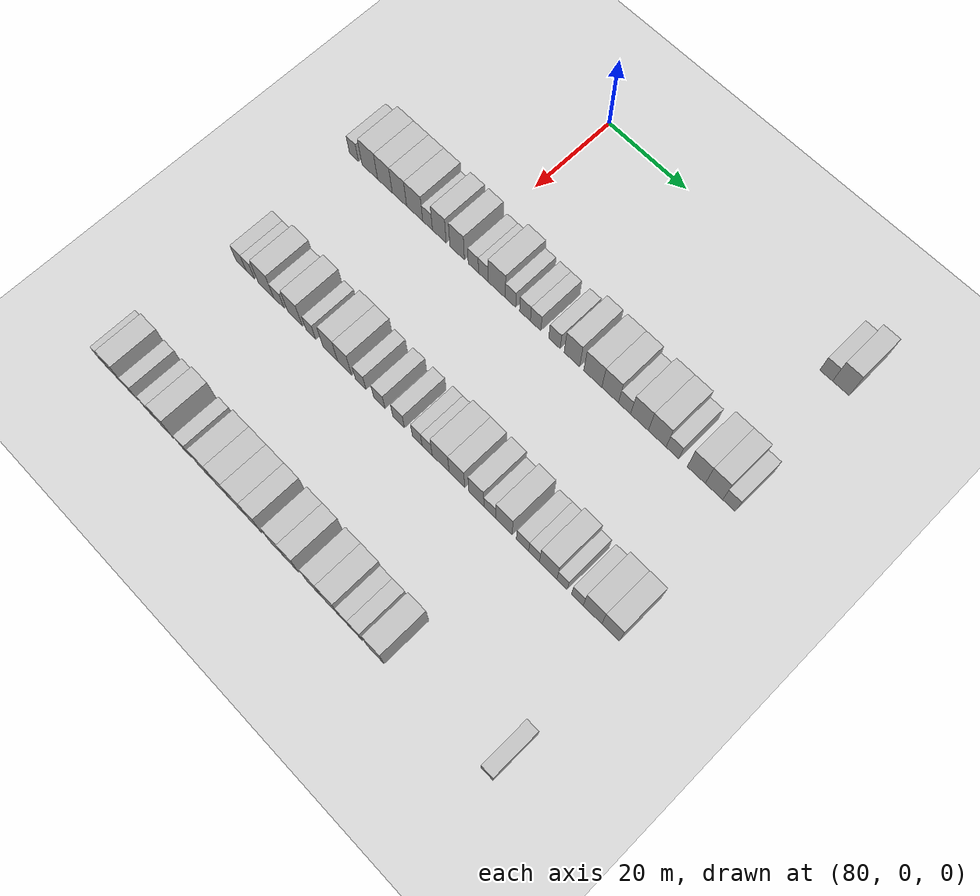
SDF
<sdf version="1.6">
 <world name="default">
  <include>
   <name>ground_plane_2</name>
   <uri>model://HANNAS_ground_plane</uri>
   <pose>100 0 0  0 0 0</pose>
  </include>
  <model name="building_579">
   <static>1</static>
   <pose>85.0000 62.6879 0 0.000000 0.000000 0.000000</pose>
   <link name="link">
    <pose>0 0 3.00 0 0 0</pose>
    <collision name="collision"><geometry><box><size>10.0000 2.9323 6.0000</size></box></geometry></collision>
    <visual name="visual">
     <cast_shadows>0</cast_shadows>
     <geometry><box><size>10.0000 2.9323 6.0000</size></box></geometry>
     <material>
      <script>
       <uri>model://HANNAS_wall/materials/scripts</uri>
       <uri>model://HANNAS_wall/materials/textures</uri>
       <name>vrc/HANNAS_wall</name>
      </script>
     </material>
    </visual>
   </link>
  </model>
  <model name="building_580">
   <static>1</static>
   <pose>85.0000 66.0612 0 0.000000 0.000000 0.000000</pose>
   <link name="link">
    <pose>0 0 4.50 0 0 0</pose>
    <collision name="collision"><geometry><box><size>10.0000 3.8143 9.0000</size></box></geometry></collision>
    <visual name="visual">
     <cast_shadows>0</cast_shadows>
     <geometry><box><size>10.0000 3.8143 9.0000</size></box></geometry>
     <material>
      <script>
       <uri>model://HANNAS_wall/materials/scripts</uri>
       <uri>model://HANNAS_wall/materials/textures</uri>
       <name>vrc/HANNAS_wall</name>
      </script>
     </material>
    </visual>
   </link>
  </model>
  <model name="building_777">
   <static>1</static>
   <pose>115.0000 -28.6272 0 0.000000 0.000000 0.000000</pose>
   <link name="link">
    <pose>0 0 3.00 0 0 0</pose>
    <collision name="collision"><geometry><box><size>10.0000 2.5444 6.0000</size></box></geometry></collision>
    <visual name="visual">
     <cast_shadows>0</cast_shadows>
     <geometry><box><size>10.0000 2.5444 6.0000</size></box></geometry>
     <material>
      <script>
       <uri>model://HANNAS_wall/materials/scripts</uri>
       <uri>model://HANNAS_wall/materials/textures</uri>
       <name>vrc/HANNAS_wall</name>
      </script>
     </material>
    </visual>
   </link>
  </model>
  <model name="building_778">
   <static>1</static>
   <pose>115.0000 -24.1770 0 0.000000 0.000000 0.000000</pose>
   <link name="link">
    <pose>0 0 4.50 0 0 0</pose>
    <collision name="collision"><geometry><box><size>10.0000 4.3560 9.0000</size></box></geometry></collision>
    <visual name="visual">
     <cast_shadows>0</cast_shadows>
     <geometry><box><size>10.0000 4.3560 9.0000</size></box></geometry>
     <material>
      <script>
       <uri>model://HANNAS_wall/materials/scripts</uri>
       <uri>model://HANNAS_wall/materials/textures</uri>
       <name>vrc/HANNAS_wall</name>
      </script>
     </material>
    </visual>
   </link>
  </model>
  <model name="building_779">
   <static>1</static>
   <pose>115.0000 -19.9684 0 0.000000 0.000000 0.000000</pose>
   <link name="link">
    <pose>0 0 4.50 0 0 0</pose>
    <collision name="collision"><geometry><box><size>10.0000 4.0613 9.0000</size></box></geometry></collision>
    <visual name="visual">
     <cast_shadows>0</cast_shadows>
     <geometry><box><size>10.0000 4.0613 9.0000</size></box></geometry>
     <material>
      <script>
       <uri>model://HANNAS_wall/materials/scripts</uri>
       <uri>model://HANNAS_wall/materials/textures</uri>
       <name>vrc/HANNAS_wall</name>
      </script>
     </material>
    </visual>
   </link>
  </model>
  <model name="building_780">
   <static>1</static>
   <pose>115.0000 -15.9633 0 0.000000 0.000000 0.000000</pose>
   <link name="link">
    <pose>0 0 4.50 0 0 0</pose>
    <collision name="collision"><geometry><box><size>10.0000 3.9489 9.0000</size></box></geometry></collision>
    <visual name="visual">
     <cast_shadows>0</cast_shadows>
     <geometry><box><size>10.0000 3.9489 9.0000</size></box></geometry>
     <material>
      <script>
       <uri>model://HANNAS_wall/materials/scripts</uri>
       <uri>model://HANNAS_wall/materials/textures</uri>
       <name>vrc/HANNAS_wall</name>
      </script>
     </material>
    </visual>
   </link>
  </model>
  <model name="building_781">
   <static>1</static>
   <pose>115.0000 -11.8020 0 0.000000 0.000000 0.000000</pose>
   <link name="link">
    <pose>0 0 4.50 0 0 0</pose>
    <collision name="collision"><geometry><box><size>10.0000 4.3737 9.0000</size></box></geometry></collision>
    <visual name="visual">
     <cast_shadows>0</cast_shadows>
     <geometry><box><size>10.0000 4.3737 9.0000</size></box></geometry>
     <material>
      <script>
       <uri>model://HANNAS_wall/materials/scripts</uri>
       <uri>model://HANNAS_wall/materials/textures</uri>
       <name>vrc/HANNAS_wall</name>
      </script>
     </material>
    </visual>
   </link>
  </model>
  <model name="building_782">
   <static>1</static>
   <pose>115.0000 -8.3048 0 0.000000 0.000000 0.000000</pose>
   <link name="link">
    <pose>0 0 3.00 0 0 0</pose>
    <collision name="collision"><geometry><box><size>10.0000 2.6205 6.0000</size></box></geometry></collision>
    <visual name="visual">
     <cast_shadows>0</cast_shadows>
     <geometry><box><size>10.0000 2.6205 6.0000</size></box></geometry>
     <material>
      <script>
       <uri>model://HANNAS_wall/materials/scripts</uri>
       <uri>model://HANNAS_wall/materials/textures</uri>
       <name>vrc/HANNAS_wall</name>
      </script>
     </material>
    </visual>
   </link>
  </model>
  <model name="building_783">
   <static>1</static>
   <pose>115.0000 -5.1531 0 0.000000 0.000000 0.000000</pose>
   <link name="link">
    <pose>0 0 4.50 0 0 0</pose>
    <collision name="collision"><geometry><box><size>10.0000 3.6829 9.0000</size></box></geometry></collision>
    <visual name="visual">
     <cast_shadows>0</cast_shadows>
     <geometry><box><size>10.0000 3.6829 9.0000</size></box></geometry>
     <material>
      <script>
       <uri>model://HANNAS_wall/materials/scripts</uri>
       <uri>model://HANNAS_wall/materials/textures</uri>
       <name>vrc/HANNAS_wall</name>
      </script>
     </material>
    </visual>
   </link>
  </model>
  <model name="building_784">
   <static>1</static>
   <pose>115.0000 -0.3969 0 0.000000 0.000000 0.000000</pose>
   <link name="link">
    <pose>0 0 4.50 0 0 0</pose>
    <collision name="collision"><geometry><box><size>10.0000 3.8297 9.0000</size></box></geometry></collision>
    <visual name="visual">
     <cast_shadows>0</cast_shadows>
     <geometry><box><size>10.0000 3.8297 9.0000</size></box></geometry>
     <material>
      <script>
       <uri>model://HANNAS_wall/materials/scripts</uri>
       <uri>model://HANNAS_wall/materials/textures</uri>
       <name>vrc/HANNAS_wall</name>
      </script>
     </material>
    </visual>
   </link>
  </model>
  <model name="building_785">
   <static>1</static>
   <pose>115.0000 3.8708 0 0.000000 0.000000 0.000000</pose>
   <link name="link">
    <pose>0 0 3.00 0 0 0</pose>
    <collision name="collision"><geometry><box><size>10.0000 2.7057 6.0000</size></box></geometry></collision>
    <visual name="visual">
     <cast_shadows>0</cast_shadows>
     <geometry><box><size>10.0000 2.7057 6.0000</size></box></geometry>
     <material>
      <script>
       <uri>model://HANNAS_wall/materials/scripts</uri>
       <uri>model://HANNAS_wall/materials/textures</uri>
       <name>vrc/HANNAS_wall</name>
      </script>
     </material>
    </visual>
   </link>
  </model>
  <model name="building_786">
   <static>1</static>
   <pose>115.0000 6.4735 0 0.000000 0.000000 0.000000</pose>
   <link name="link">
    <pose>0 0 3.00 0 0 0</pose>
    <collision name="collision"><geometry><box><size>10.0000 2.4996 6.0000</size></box></geometry></collision>
    <visual name="visual">
     <cast_shadows>0</cast_shadows>
     <geometry><box><size>10.0000 2.4996 6.0000</size></box></geometry>
     <material>
      <script>
       <uri>model://HANNAS_wall/materials/scripts</uri>
       <uri>model://HANNAS_wall/materials/textures</uri>
       <name>vrc/HANNAS_wall</name>
      </script>
     </material>
    </visual>
   </link>
  </model>
  <model name="building_787">
   <static>1</static>
   <pose>115.0000 9.9530 0 0.000000 0.000000 0.000000</pose>
   <link name="link">
    <pose>0 0 4.50 0 0 0</pose>
    <collision name="collision"><geometry><box><size>10.0000 4.4594 9.0000</size></box></geometry></collision>
    <visual name="visual">
     <cast_shadows>0</cast_shadows>
     <geometry><box><size>10.0000 4.4594 9.0000</size></box></geometry>
     <material>
      <script>
       <uri>model://HANNAS_wall/materials/scripts</uri>
       <uri>model://HANNAS_wall/materials/textures</uri>
       <name>vrc/HANNAS_wall</name>
      </script>
     </material>
    </visual>
   </link>
  </model>
  <model name="building_788">
   <static>1</static>
   <pose>115.0000 13.5295 0 0.000000 0.000000 0.000000</pose>
   <link name="link">
    <pose>0 0 3.00 0 0 0</pose>
    <collision name="collision"><geometry><box><size>10.0000 2.6935 6.0000</size></box></geometry></collision>
    <visual name="visual">
     <cast_shadows>0</cast_shadows>
     <geometry><box><size>10.0000 2.6935 6.0000</size></box></geometry>
     <material>
      <script>
       <uri>model://HANNAS_wall/materials/scripts</uri>
       <uri>model://HANNAS_wall/materials/textures</uri>
       <name>vrc/HANNAS_wall</name>
      </script>
     </material>
    </visual>
   </link>
  </model>
  <model name="building_789">
   <static>1</static>
   <pose>115.0000 17.2553 0 0.000000 0.000000 0.000000</pose>
   <link name="link">
    <pose>0 0 3.00 0 0 0</pose>
    <collision name="collision"><geometry><box><size>10.0000 2.7581 6.0000</size></box></geometry></collision>
    <visual name="visual">
     <cast_shadows>0</cast_shadows>
     <geometry><box><size>10.0000 2.7581 6.0000</size></box></geometry>
     <material>
      <script>
       <uri>model://HANNAS_wall/materials/scripts</uri>
       <uri>model://HANNAS_wall/materials/textures</uri>
       <name>vrc/HANNAS_wall</name>
      </script>
     </material>
    </visual>
   </link>
  </model>
  <model name="building_790">
   <static>1</static>
   <pose>115.0000 19.9574 0 0.000000 0.000000 0.000000</pose>
   <link name="link">
    <pose>0 0 3.00 0 0 0</pose>
    <collision name="collision"><geometry><box><size>10.0000 2.6461 6.0000</size></box></geometry></collision>
    <visual name="visual">
     <cast_shadows>0</cast_shadows>
     <geometry><box><size>10.0000 2.6461 6.0000</size></box></geometry>
     <material>
      <script>
       <uri>model://HANNAS_wall/materials/scripts</uri>
       <uri>model://HANNAS_wall/materials/textures</uri>
       <name>vrc/HANNAS_wall</name>
      </script>
     </material>
    </visual>
   </link>
  </model>
  <model name="building_791">
   <static>1</static>
   <pose>115.0000 24.7151 0 0.000000 0.000000 0.000000</pose>
   <link name="link">
    <pose>0 0 3.00 0 0 0</pose>
    <collision name="collision"><geometry><box><size>10.0000 2.8693 6.0000</size></box></geometry></collision>
    <visual name="visual">
     <cast_shadows>0</cast_shadows>
     <geometry><box><size>10.0000 2.8693 6.0000</size></box></geometry>
     <material>
      <script>
       <uri>model://HANNAS_wall/materials/scripts</uri>
       <uri>model://HANNAS_wall/materials/textures</uri>
       <name>vrc/HANNAS_wall</name>
      </script>
     </material>
    </visual>
   </link>
  </model>
  <model name="building_792">
   <static>1</static>
   <pose>115.0000 29.0705 0 0.000000 0.000000 0.000000</pose>
   <link name="link">
    <pose>0 0 4.50 0 0 0</pose>
    <collision name="collision"><geometry><box><size>10.0000 3.8414 9.0000</size></box></geometry></collision>
    <visual name="visual">
     <cast_shadows>0</cast_shadows>
     <geometry><box><size>10.0000 3.8414 9.0000</size></box></geometry>
     <material>
      <script>
       <uri>model://HANNAS_wall/materials/scripts</uri>
       <uri>model://HANNAS_wall/materials/textures</uri>
       <name>vrc/HANNAS_wall</name>
      </script>
     </material>
    </visual>
   </link>
  </model>
  <model name="building_793">
   <static>1</static>
   <pose>115.0000 34.2207 0 0.000000 0.000000 0.000000</pose>
   <link name="link">
    <pose>0 0 4.50 0 0 0</pose>
    <collision name="collision"><geometry><box><size>10.0000 4.4589 9.0000</size></box></geometry></collision>
    <visual name="visual">
     <cast_shadows>0</cast_shadows>
     <geometry><box><size>10.0000 4.4589 9.0000</size></box></geometry>
     <material>
      <script>
       <uri>model://HANNAS_wall/materials/scripts</uri>
       <uri>model://HANNAS_wall/materials/textures</uri>
       <name>vrc/HANNAS_wall</name>
      </script>
     </material>
    </visual>
   </link>
  </model>
  <model name="building_794">
   <static>1</static>
   <pose>115.0000 38.4726 0 0.000000 0.000000 0.000000</pose>
   <link name="link">
    <pose>0 0 4.50 0 0 0</pose>
    <collision name="collision"><geometry><box><size>10.0000 4.0450 9.0000</size></box></geometry></collision>
    <visual name="visual">
     <cast_shadows>0</cast_shadows>
     <geometry><box><size>10.0000 4.0450 9.0000</size></box></geometry>
     <material>
      <script>
       <uri>model://HANNAS_wall/materials/scripts</uri>
       <uri>model://HANNAS_wall/materials/textures</uri>
       <name>vrc/HANNAS_wall</name>
      </script>
     </material>
    </visual>
   </link>
  </model>
  <model name="building_795">
   <static>1</static>
   <pose>115.0000 41.9657 0 0.000000 0.000000 0.000000</pose>
   <link name="link">
    <pose>0 0 3.00 0 0 0</pose>
    <collision name="collision"><geometry><box><size>10.0000 2.9412 6.0000</size></box></geometry></collision>
    <visual name="visual">
     <cast_shadows>0</cast_shadows>
     <geometry><box><size>10.0000 2.9412 6.0000</size></box></geometry>
     <material>
      <script>
       <uri>model://HANNAS_wall/materials/scripts</uri>
       <uri>model://HANNAS_wall/materials/textures</uri>
       <name>vrc/HANNAS_wall</name>
      </script>
     </material>
    </visual>
   </link>
  </model>
  <model name="building_796">
   <static>1</static>
   <pose>115.0000 45.5655 0 0.000000 0.000000 0.000000</pose>
   <link name="link">
    <pose>0 0 4.50 0 0 0</pose>
    <collision name="collision"><geometry><box><size>10.0000 4.2584 9.0000</size></box></geometry></collision>
    <visual name="visual">
     <cast_shadows>0</cast_shadows>
     <geometry><box><size>10.0000 4.2584 9.0000</size></box></geometry>
     <material>
      <script>
       <uri>model://HANNAS_wall/materials/scripts</uri>
       <uri>model://HANNAS_wall/materials/textures</uri>
       <name>vrc/HANNAS_wall</name>
      </script>
     </material>
    </visual>
   </link>
  </model>
  <model name="building_797">
   <static>1</static>
   <pose>115.0000 49.8046 0 0.000000 0.000000 0.000000</pose>
   <link name="link">
    <pose>0 0 4.50 0 0 0</pose>
    <collision name="collision"><geometry><box><size>10.0000 4.2198 9.0000</size></box></geometry></collision>
    <visual name="visual">
     <cast_shadows>0</cast_shadows>
     <geometry><box><size>10.0000 4.2198 9.0000</size></box></geometry>
     <material>
      <script>
       <uri>model://HANNAS_wall/materials/scripts</uri>
       <uri>model://HANNAS_wall/materials/textures</uri>
       <name>vrc/HANNAS_wall</name>
      </script>
     </material>
    </visual>
   </link>
  </model>
  <model name="building_798">
   <static>1</static>
   <pose>115.0000 53.4021 0 0.000000 0.000000 0.000000</pose>
   <link name="link">
    <pose>0 0 3.00 0 0 0</pose>
    <collision name="collision"><geometry><box><size>10.0000 2.9750 6.0000</size></box></geometry></collision>
    <visual name="visual">
     <cast_shadows>0</cast_shadows>
     <geometry><box><size>10.0000 2.9750 6.0000</size></box></geometry>
     <material>
      <script>
       <uri>model://HANNAS_wall/materials/scripts</uri>
       <uri>model://HANNAS_wall/materials/textures</uri>
       <name>vrc/HANNAS_wall</name>
      </script>
     </material>
    </visual>
   </link>
  </model>
  <model name="building_799">
   <static>1</static>
   <pose>115.0000 58.9686 0 0.000000 0.000000 0.000000</pose>
   <link name="link">
    <pose>0 0 4.50 0 0 0</pose>
    <collision name="collision"><geometry><box><size>10.0000 4.1580 9.0000</size></box></geometry></collision>
    <visual name="visual">
     <cast_shadows>0</cast_shadows>
     <geometry><box><size>10.0000 4.1580 9.0000</size></box></geometry>
     <material>
      <script>
       <uri>model://HANNAS_wall/materials/scripts</uri>
       <uri>model://HANNAS_wall/materials/textures</uri>
       <name>vrc/HANNAS_wall</name>
      </script>
     </material>
    </visual>
   </link>
  </model>
  <model name="building_800">
   <static>1</static>
   <pose>115.0000 63.0670 0 0.000000 0.000000 0.000000</pose>
   <link name="link">
    <pose>0 0 4.50 0 0 0</pose>
    <collision name="collision"><geometry><box><size>10.0000 4.0387 9.0000</size></box></geometry></collision>
    <visual name="visual">
     <cast_shadows>0</cast_shadows>
     <geometry><box><size>10.0000 4.0387 9.0000</size></box></geometry>
     <material>
      <script>
       <uri>model://HANNAS_wall/materials/scripts</uri>
       <uri>model://HANNAS_wall/materials/textures</uri>
       <name>vrc/HANNAS_wall</name>
      </script>
     </material>
    </visual>
   </link>
  </model>
  <model name="building_801">
   <static>1</static>
   <pose>115.0000 66.5256 0 0.000000 0.000000 0.000000</pose>
   <link name="link">
    <pose>0 0 3.00 0 0 0</pose>
    <collision name="collision"><geometry><box><size>10.0000 2.8786 6.0000</size></box></geometry></collision>
    <visual name="visual">
     <cast_shadows>0</cast_shadows>
     <geometry><box><size>10.0000 2.8786 6.0000</size></box></geometry>
     <material>
      <script>
       <uri>model://HANNAS_wall/materials/scripts</uri>
       <uri>model://HANNAS_wall/materials/textures</uri>
       <name>vrc/HANNAS_wall</name>
      </script>
     </material>
    </visual>
   </link>
  </model>
  <model name="building_1000">
   <static>1</static>
   <pose>145.0000 -26.2149 0 0.000000 0.000000 0.000000</pose>
   <link name="link">
    <pose>0 0 3.00 0 0 0</pose>
    <collision name="collision"><geometry><box><size>10.0000 2.8264 6.0000</size></box></geometry></collision>
    <visual name="visual">
     <cast_shadows>0</cast_shadows>
     <geometry><box><size>10.0000 2.8264 6.0000</size></box></geometry>
     <material>
      <script>
       <uri>model://HANNAS_wall/materials/scripts</uri>
       <uri>model://HANNAS_wall/materials/textures</uri>
       <name>vrc/HANNAS_wall</name>
      </script>
     </material>
    </visual>
   </link>
  </model>
  <model name="building_1001">
   <static>1</static>
   <pose>145.0000 -23.5952 0 0.000000 0.000000 0.000000</pose>
   <link name="link">
    <pose>0 0 3.00 0 0 0</pose>
    <collision name="collision"><geometry><box><size>10.0000 2.4131 6.0000</size></box></geometry></collision>
    <visual name="visual">
     <cast_shadows>0</cast_shadows>
     <geometry><box><size>10.0000 2.4131 6.0000</size></box></geometry>
     <material>
      <script>
       <uri>model://HANNAS_wall/materials/scripts</uri>
       <uri>model://HANNAS_wall/materials/textures</uri>
       <name>vrc/HANNAS_wall</name>
      </script>
     </material>
    </visual>
   </link>
  </model>
  <model name="building_1002">
   <static>1</static>
   <pose>145.0000 -19.2319 0 0.000000 0.000000 0.000000</pose>
   <link name="link">
    <pose>0 0 4.50 0 0 0</pose>
    <collision name="collision"><geometry><box><size>10.0000 4.3136 9.0000</size></box></geometry></collision>
    <visual name="visual">
     <cast_shadows>0</cast_shadows>
     <geometry><box><size>10.0000 4.3136 9.0000</size></box></geometry>
     <material>
      <script>
       <uri>model://HANNAS_wall/materials/scripts</uri>
       <uri>model://HANNAS_wall/materials/textures</uri>
       <name>vrc/HANNAS_wall</name>
      </script>
     </material>
    </visual>
   </link>
  </model>
  <model name="building_1003">
   <static>1</static>
   <pose>145.0000 -15.6306 0 0.000000 0.000000 0.000000</pose>
   <link name="link">
    <pose>0 0 3.00 0 0 0</pose>
    <collision name="collision"><geometry><box><size>10.0000 2.8890 6.0000</size></box></geometry></collision>
    <visual name="visual">
     <cast_shadows>0</cast_shadows>
     <geometry><box><size>10.0000 2.8890 6.0000</size></box></geometry>
     <material>
      <script>
       <uri>model://HANNAS_wall/materials/scripts</uri>
       <uri>model://HANNAS_wall/materials/textures</uri>
       <name>vrc/HANNAS_wall</name>
      </script>
     </material>
    </visual>
   </link>
  </model>
  <model name="building_1004">
   <static>1</static>
   <pose>145.0000 -11.1853 0 0.000000 0.000000 0.000000</pose>
   <link name="link">
    <pose>0 0 4.50 0 0 0</pose>
    <collision name="collision"><geometry><box><size>10.0000 4.0017 9.0000</size></box></geometry></collision>
    <visual name="visual">
     <cast_shadows>0</cast_shadows>
     <geometry><box><size>10.0000 4.0017 9.0000</size></box></geometry>
     <material>
      <script>
       <uri>model://HANNAS_wall/materials/scripts</uri>
       <uri>model://HANNAS_wall/materials/textures</uri>
       <name>vrc/HANNAS_wall</name>
      </script>
     </material>
    </visual>
   </link>
  </model>
  <model name="building_1005">
   <static>1</static>
   <pose>145.0000 -6.9002 0 0.000000 0.000000 0.000000</pose>
   <link name="link">
    <pose>0 0 3.00 0 0 0</pose>
    <collision name="collision"><geometry><box><size>10.0000 2.5684 6.0000</size></box></geometry></collision>
    <visual name="visual">
     <cast_shadows>0</cast_shadows>
     <geometry><box><size>10.0000 2.5684 6.0000</size></box></geometry>
     <material>
      <script>
       <uri>model://HANNAS_wall/materials/scripts</uri>
       <uri>model://HANNAS_wall/materials/textures</uri>
       <name>vrc/HANNAS_wall</name>
      </script>
     </material>
    </visual>
   </link>
  </model>
  <model name="building_1006">
   <static>1</static>
   <pose>145.0000 -1.6633 0 0.000000 0.000000 0.000000</pose>
   <link name="link">
    <pose>0 0 4.50 0 0 0</pose>
    <collision name="collision"><geometry><box><size>10.0000 3.9055 9.0000</size></box></geometry></collision>
    <visual name="visual">
     <cast_shadows>0</cast_shadows>
     <geometry><box><size>10.0000 3.9055 9.0000</size></box></geometry>
     <material>
      <script>
       <uri>model://HANNAS_wall/materials/scripts</uri>
       <uri>model://HANNAS_wall/materials/textures</uri>
       <name>vrc/HANNAS_wall</name>
      </script>
     </material>
    </visual>
   </link>
  </model>
  <model name="building_1007">
   <static>1</static>
   <pose>145.0000 2.1236 0 0.000000 0.000000 0.000000</pose>
   <link name="link">
    <pose>0 0 4.50 0 0 0</pose>
    <collision name="collision"><geometry><box><size>10.0000 3.6683 9.0000</size></box></geometry></collision>
    <visual name="visual">
     <cast_shadows>0</cast_shadows>
     <geometry><box><size>10.0000 3.6683 9.0000</size></box></geometry>
     <material>
      <script>
       <uri>model://HANNAS_wall/materials/scripts</uri>
       <uri>model://HANNAS_wall/materials/textures</uri>
       <name>vrc/HANNAS_wall</name>
      </script>
     </material>
    </visual>
   </link>
  </model>
  <model name="building_1008">
   <static>1</static>
   <pose>145.0000 6.3409 0 0.000000 0.000000 0.000000</pose>
   <link name="link">
    <pose>0 0 3.00 0 0 0</pose>
    <collision name="collision"><geometry><box><size>10.0000 2.7663 6.0000</size></box></geometry></collision>
    <visual name="visual">
     <cast_shadows>0</cast_shadows>
     <geometry><box><size>10.0000 2.7663 6.0000</size></box></geometry>
     <material>
      <script>
       <uri>model://HANNAS_wall/materials/scripts</uri>
       <uri>model://HANNAS_wall/materials/textures</uri>
       <name>vrc/HANNAS_wall</name>
      </script>
     </material>
    </visual>
   </link>
  </model>
  <model name="building_1009">
   <static>1</static>
   <pose>145.0000 11.2041 0 0.000000 0.000000 0.000000</pose>
   <link name="link">
    <pose>0 0 3.00 0 0 0</pose>
    <collision name="collision"><geometry><box><size>10.0000 2.9601 6.0000</size></box></geometry></collision>
    <visual name="visual">
     <cast_shadows>0</cast_shadows>
     <geometry><box><size>10.0000 2.9601 6.0000</size></box></geometry>
     <material>
      <script>
       <uri>model://HANNAS_wall/materials/scripts</uri>
       <uri>model://HANNAS_wall/materials/textures</uri>
       <name>vrc/HANNAS_wall</name>
      </script>
     </material>
    </visual>
   </link>
  </model>
  <model name="building_1010">
   <static>1</static>
   <pose>145.0000 16.1800 0 0.000000 0.000000 0.000000</pose>
   <link name="link">
    <pose>0 0 3.00 0 0 0</pose>
    <collision name="collision"><geometry><box><size>10.0000 2.9919 6.0000</size></box></geometry></collision>
    <visual name="visual">
     <cast_shadows>0</cast_shadows>
     <geometry><box><size>10.0000 2.9919 6.0000</size></box></geometry>
     <material>
      <script>
       <uri>model://HANNAS_wall/materials/scripts</uri>
       <uri>model://HANNAS_wall/materials/textures</uri>
       <name>vrc/HANNAS_wall</name>
      </script>
     </material>
    </visual>
   </link>
  </model>
  <model name="building_1011">
   <static>1</static>
   <pose>145.0000 20.9081 0 0.000000 0.000000 0.000000</pose>
   <link name="link">
    <pose>0 0 3.00 0 0 0</pose>
    <collision name="collision"><geometry><box><size>10.0000 2.4642 6.0000</size></box></geometry></collision>
    <visual name="visual">
     <cast_shadows>0</cast_shadows>
     <geometry><box><size>10.0000 2.4642 6.0000</size></box></geometry>
     <material>
      <script>
       <uri>model://HANNAS_wall/materials/scripts</uri>
       <uri>model://HANNAS_wall/materials/textures</uri>
       <name>vrc/HANNAS_wall</name>
      </script>
     </material>
    </visual>
   </link>
  </model>
  <model name="building_1012">
   <static>1</static>
   <pose>145.0000 23.4206 0 0.000000 0.000000 0.000000</pose>
   <link name="link">
    <pose>0 0 3.00 0 0 0</pose>
    <collision name="collision"><geometry><box><size>10.0000 2.5610 6.0000</size></box></geometry></collision>
    <visual name="visual">
     <cast_shadows>0</cast_shadows>
     <geometry><box><size>10.0000 2.5610 6.0000</size></box></geometry>
     <material>
      <script>
       <uri>model://HANNAS_wall/materials/scripts</uri>
       <uri>model://HANNAS_wall/materials/textures</uri>
       <name>vrc/HANNAS_wall</name>
      </script>
     </material>
    </visual>
   </link>
  </model>
  <model name="building_1013">
   <static>1</static>
   <pose>145.0000 26.8271 0 0.000000 0.000000 0.000000</pose>
   <link name="link">
    <pose>0 0 4.50 0 0 0</pose>
    <collision name="collision"><geometry><box><size>10.0000 4.2521 9.0000</size></box></geometry></collision>
    <visual name="visual">
     <cast_shadows>0</cast_shadows>
     <geometry><box><size>10.0000 4.2521 9.0000</size></box></geometry>
     <material>
      <script>
       <uri>model://HANNAS_wall/materials/scripts</uri>
       <uri>model://HANNAS_wall/materials/textures</uri>
       <name>vrc/HANNAS_wall</name>
      </script>
     </material>
    </visual>
   </link>
  </model>
  <model name="building_1014">
   <static>1</static>
   <pose>145.0000 30.8858 0 0.000000 0.000000 0.000000</pose>
   <link name="link">
    <pose>0 0 4.50 0 0 0</pose>
    <collision name="collision"><geometry><box><size>10.0000 3.8653 9.0000</size></box></geometry></collision>
    <visual name="visual">
     <cast_shadows>0</cast_shadows>
     <geometry><box><size>10.0000 3.8653 9.0000</size></box></geometry>
     <material>
      <script>
       <uri>model://HANNAS_wall/materials/scripts</uri>
       <uri>model://HANNAS_wall/materials/textures</uri>
       <name>vrc/HANNAS_wall</name>
      </script>
     </material>
    </visual>
   </link>
  </model>
  <model name="building_1015">
   <static>1</static>
   <pose>145.0000 35.6564 0 0.000000 0.000000 0.000000</pose>
   <link name="link">
    <pose>0 0 4.50 0 0 0</pose>
    <collision name="collision"><geometry><box><size>10.0000 3.6758 9.0000</size></box></geometry></collision>
    <visual name="visual">
     <cast_shadows>0</cast_shadows>
     <geometry><box><size>10.0000 3.6758 9.0000</size></box></geometry>
     <material>
      <script>
       <uri>model://HANNAS_wall/materials/scripts</uri>
       <uri>model://HANNAS_wall/materials/textures</uri>
       <name>vrc/HANNAS_wall</name>
      </script>
     </material>
    </visual>
   </link>
  </model>
  <model name="building_1016">
   <static>1</static>
   <pose>145.0000 38.9249 0 0.000000 0.000000 0.000000</pose>
   <link name="link">
    <pose>0 0 3.00 0 0 0</pose>
    <collision name="collision"><geometry><box><size>10.0000 2.8613 6.0000</size></box></geometry></collision>
    <visual name="visual">
     <cast_shadows>0</cast_shadows>
     <geometry><box><size>10.0000 2.8613 6.0000</size></box></geometry>
     <material>
      <script>
       <uri>model://HANNAS_wall/materials/scripts</uri>
       <uri>model://HANNAS_wall/materials/textures</uri>
       <name>vrc/HANNAS_wall</name>
      </script>
     </material>
    </visual>
   </link>
  </model>
  <model name="building_1017">
   <static>1</static>
   <pose>145.0000 42.3459 0 0.000000 0.000000 0.000000</pose>
   <link name="link">
    <pose>0 0 4.50 0 0 0</pose>
    <collision name="collision"><geometry><box><size>10.0000 3.9807 9.0000</size></box></geometry></collision>
    <visual name="visual">
     <cast_shadows>0</cast_shadows>
     <geometry><box><size>10.0000 3.9807 9.0000</size></box></geometry>
     <material>
      <script>
       <uri>model://HANNAS_wall/materials/scripts</uri>
       <uri>model://HANNAS_wall/materials/textures</uri>
       <name>vrc/HANNAS_wall</name>
      </script>
     </material>
    </visual>
   </link>
  </model>
  <model name="building_1018">
   <static>1</static>
   <pose>145.0000 46.8106 0 0.000000 0.000000 0.000000</pose>
   <link name="link">
    <pose>0 0 3.00 0 0 0</pose>
    <collision name="collision"><geometry><box><size>10.0000 2.9487 6.0000</size></box></geometry></collision>
    <visual name="visual">
     <cast_shadows>0</cast_shadows>
     <geometry><box><size>10.0000 2.9487 6.0000</size></box></geometry>
     <material>
      <script>
       <uri>model://HANNAS_wall/materials/scripts</uri>
       <uri>model://HANNAS_wall/materials/textures</uri>
       <name>vrc/HANNAS_wall</name>
      </script>
     </material>
    </visual>
   </link>
  </model>
  <model name="building_1019">
   <static>1</static>
   <pose>145.0000 49.5618 0 0.000000 0.000000 0.000000</pose>
   <link name="link">
    <pose>0 0 3.00 0 0 0</pose>
    <collision name="collision"><geometry><box><size>10.0000 2.5536 6.0000</size></box></geometry></collision>
    <visual name="visual">
     <cast_shadows>0</cast_shadows>
     <geometry><box><size>10.0000 2.5536 6.0000</size></box></geometry>
     <material>
      <script>
       <uri>model://HANNAS_wall/materials/scripts</uri>
       <uri>model://HANNAS_wall/materials/textures</uri>
       <name>vrc/HANNAS_wall</name>
      </script>
     </material>
    </visual>
   </link>
  </model>
  <model name="building_1020">
   <static>1</static>
   <pose>145.0000 52.8923 0 0.000000 0.000000 0.000000</pose>
   <link name="link">
    <pose>0 0 4.50 0 0 0</pose>
    <collision name="collision"><geometry><box><size>10.0000 4.1074 9.0000</size></box></geometry></collision>
    <visual name="visual">
     <cast_shadows>0</cast_shadows>
     <geometry><box><size>10.0000 4.1074 9.0000</size></box></geometry>
     <material>
      <script>
       <uri>model://HANNAS_wall/materials/scripts</uri>
       <uri>model://HANNAS_wall/materials/textures</uri>
       <name>vrc/HANNAS_wall</name>
      </script>
     </material>
    </visual>
   </link>
  </model>
  <model name="building_1021">
   <static>1</static>
   <pose>145.0000 56.1477 0 0.000000 0.000000 0.000000</pose>
   <link name="link">
    <pose>0 0 3.00 0 0 0</pose>
    <collision name="collision"><geometry><box><size>10.0000 2.4034 6.0000</size></box></geometry></collision>
    <visual name="visual">
     <cast_shadows>0</cast_shadows>
     <geometry><box><size>10.0000 2.4034 6.0000</size></box></geometry>
     <material>
      <script>
       <uri>model://HANNAS_wall/materials/scripts</uri>
       <uri>model://HANNAS_wall/materials/textures</uri>
       <name>vrc/HANNAS_wall</name>
      </script>
     </material>
    </visual>
   </link>
  </model>
  <model name="building_1022">
   <static>1</static>
   <pose>145.0000 59.7065 0 0.000000 0.000000 0.000000</pose>
   <link name="link">
    <pose>0 0 3.00 0 0 0</pose>
    <collision name="collision"><geometry><box><size>10.0000 2.7140 6.0000</size></box></geometry></collision>
    <visual name="visual">
     <cast_shadows>0</cast_shadows>
     <geometry><box><size>10.0000 2.7140 6.0000</size></box></geometry>
     <material>
      <script>
       <uri>model://HANNAS_wall/materials/scripts</uri>
       <uri>model://HANNAS_wall/materials/textures</uri>
       <name>vrc/HANNAS_wall</name>
      </script>
     </material>
    </visual>
   </link>
  </model>
  <model name="building_1023">
   <static>1</static>
   <pose>145.0000 63.1895 0 0.000000 0.000000 0.000000</pose>
   <link name="link">
    <pose>0 0 4.50 0 0 0</pose>
    <collision name="collision"><geometry><box><size>10.0000 4.2520 9.0000</size></box></geometry></collision>
    <visual name="visual">
     <cast_shadows>0</cast_shadows>
     <geometry><box><size>10.0000 4.2520 9.0000</size></box></geometry>
     <material>
      <script>
       <uri>model://HANNAS_wall/materials/scripts</uri>
       <uri>model://HANNAS_wall/materials/textures</uri>
       <name>vrc/HANNAS_wall</name>
      </script>
     </material>
    </visual>
   </link>
  </model>
  <model name="building_1024">
   <static>1</static>
   <pose>145.0000 67.3016 0 0.000000 0.000000 0.000000</pose>
   <link name="link">
    <pose>0 0 4.50 0 0 0</pose>
    <collision name="collision"><geometry><box><size>10.0000 3.9723 9.0000</size></box></geometry></collision>
    <visual name="visual">
     <cast_shadows>0</cast_shadows>
     <geometry><box><size>10.0000 3.9723 9.0000</size></box></geometry>
     <material>
      <script>
       <uri>model://HANNAS_wall/materials/scripts</uri>
       <uri>model://HANNAS_wall/materials/textures</uri>
       <name>vrc/HANNAS_wall</name>
      </script>
     </material>
    </visual>
   </link>
  </model>
  <model name="building_1229">
   <static>1</static>
   <pose>175.0000 -28.1245 0 0.000000 0.000000 0.000000</pose>
   <link name="link">
    <pose>0 0 3.00 0 0 0</pose>
    <collision name="collision"><geometry><box><size>10.0000 2.8079 6.0000</size></box></geometry></collision>
    <visual name="visual">
     <cast_shadows>0</cast_shadows>
     <geometry><box><size>10.0000 2.8079 6.0000</size></box></geometry>
     <material>
      <script>
       <uri>model://HANNAS_wall/materials/scripts</uri>
       <uri>model://HANNAS_wall/materials/textures</uri>
       <name>vrc/HANNAS_wall</name>
      </script>
     </material>
    </visual>
   </link>
  </model>
  <model name="building_1230">
   <static>1</static>
   <pose>175.0000 -24.6426 0 0.000000 0.000000 0.000000</pose>
   <link name="link">
    <pose>0 0 4.50 0 0 0</pose>
    <collision name="collision"><geometry><box><size>10.0000 4.1560 9.0000</size></box></geometry></collision>
    <visual name="visual">
     <cast_shadows>0</cast_shadows>
     <geometry><box><size>10.0000 4.1560 9.0000</size></box></geometry>
     <material>
      <script>
       <uri>model://HANNAS_wall/materials/scripts</uri>
       <uri>model://HANNAS_wall/materials/textures</uri>
       <name>vrc/HANNAS_wall</name>
      </script>
     </material>
    </visual>
   </link>
  </model>
  <model name="building_1231">
   <static>1</static>
   <pose>175.0000 -20.1579 0 0.000000 0.000000 0.000000</pose>
   <link name="link">
    <pose>0 0 3.00 0 0 0</pose>
    <collision name="collision"><geometry><box><size>10.0000 2.8132 6.0000</size></box></geometry></collision>
    <visual name="visual">
     <cast_shadows>0</cast_shadows>
     <geometry><box><size>10.0000 2.8132 6.0000</size></box></geometry>
     <material>
      <script>
       <uri>model://HANNAS_wall/materials/scripts</uri>
       <uri>model://HANNAS_wall/materials/textures</uri>
       <name>vrc/HANNAS_wall</name>
      </script>
     </material>
    </visual>
   </link>
  </model>
  <model name="building_1232">
   <static>1</static>
   <pose>175.0000 -15.3577 0 0.000000 0.000000 0.000000</pose>
   <link name="link">
    <pose>0 0 3.00 0 0 0</pose>
    <collision name="collision"><geometry><box><size>10.0000 2.7873 6.0000</size></box></geometry></collision>
    <visual name="visual">
     <cast_shadows>0</cast_shadows>
     <geometry><box><size>10.0000 2.7873 6.0000</size></box></geometry>
     <material>
      <script>
       <uri>model://HANNAS_wall/materials/scripts</uri>
       <uri>model://HANNAS_wall/materials/textures</uri>
       <name>vrc/HANNAS_wall</name>
      </script>
     </material>
    </visual>
   </link>
  </model>
  <model name="building_1233">
   <static>1</static>
   <pose>175.0000 -10.9373 0 0.000000 0.000000 0.000000</pose>
   <link name="link">
    <pose>0 0 4.50 0 0 0</pose>
    <collision name="collision"><geometry><box><size>10.0000 4.0534 9.0000</size></box></geometry></collision>
    <visual name="visual">
     <cast_shadows>0</cast_shadows>
     <geometry><box><size>10.0000 4.0534 9.0000</size></box></geometry>
     <material>
      <script>
       <uri>model://HANNAS_wall/materials/scripts</uri>
       <uri>model://HANNAS_wall/materials/textures</uri>
       <name>vrc/HANNAS_wall</name>
      </script>
     </material>
    </visual>
   </link>
  </model>
  <model name="building_1234">
   <static>1</static>
   <pose>175.0000 -5.5292 0 0.000000 0.000000 0.000000</pose>
   <link name="link">
    <pose>0 0 3.00 0 0 0</pose>
    <collision name="collision"><geometry><box><size>10.0000 2.7628 6.0000</size></box></geometry></collision>
    <visual name="visual">
     <cast_shadows>0</cast_shadows>
     <geometry><box><size>10.0000 2.7628 6.0000</size></box></geometry>
     <material>
      <script>
       <uri>model://HANNAS_wall/materials/scripts</uri>
       <uri>model://HANNAS_wall/materials/textures</uri>
       <name>vrc/HANNAS_wall</name>
      </script>
     </material>
    </visual>
   </link>
  </model>
  <model name="building_1235">
   <static>1</static>
   <pose>175.0000 -0.0649 0 0.000000 0.000000 0.000000</pose>
   <link name="link">
    <pose>0 0 4.50 0 0 0</pose>
    <collision name="collision"><geometry><box><size>10.0000 4.1658 9.0000</size></box></geometry></collision>
    <visual name="visual">
     <cast_shadows>0</cast_shadows>
     <geometry><box><size>10.0000 4.1658 9.0000</size></box></geometry>
     <material>
      <script>
       <uri>model://HANNAS_wall/materials/scripts</uri>
       <uri>model://HANNAS_wall/materials/textures</uri>
       <name>vrc/HANNAS_wall</name>
      </script>
     </material>
    </visual>
   </link>
  </model>
  <model name="building_1236">
   <static>1</static>
   <pose>175.0000 4.1920 0 0.000000 0.000000 0.000000</pose>
   <link name="link">
    <pose>0 0 4.50 0 0 0</pose>
    <collision name="collision"><geometry><box><size>10.0000 4.3482 9.0000</size></box></geometry></collision>
    <visual name="visual">
     <cast_shadows>0</cast_shadows>
     <geometry><box><size>10.0000 4.3482 9.0000</size></box></geometry>
     <material>
      <script>
       <uri>model://HANNAS_wall/materials/scripts</uri>
       <uri>model://HANNAS_wall/materials/textures</uri>
       <name>vrc/HANNAS_wall</name>
      </script>
     </material>
    </visual>
   </link>
  </model>
  <model name="building_1237">
   <static>1</static>
   <pose>175.0000 8.6141 0 0.000000 0.000000 0.000000</pose>
   <link name="link">
    <pose>0 0 4.50 0 0 0</pose>
    <collision name="collision"><geometry><box><size>10.0000 4.4960 9.0000</size></box></geometry></collision>
    <visual name="visual">
     <cast_shadows>0</cast_shadows>
     <geometry><box><size>10.0000 4.4960 9.0000</size></box></geometry>
     <material>
      <script>
       <uri>model://HANNAS_wall/materials/scripts</uri>
       <uri>model://HANNAS_wall/materials/textures</uri>
       <name>vrc/HANNAS_wall</name>
      </script>
     </material>
    </visual>
   </link>
  </model>
  <model name="building_1238">
   <static>1</static>
   <pose>175.0000 12.7095 0 0.000000 0.000000 0.000000</pose>
   <link name="link">
    <pose>0 0 4.50 0 0 0</pose>
    <collision name="collision"><geometry><box><size>10.0000 3.6947 9.0000</size></box></geometry></collision>
    <visual name="visual">
     <cast_shadows>0</cast_shadows>
     <geometry><box><size>10.0000 3.6947 9.0000</size></box></geometry>
     <material>
      <script>
       <uri>model://HANNAS_wall/materials/scripts</uri>
       <uri>model://HANNAS_wall/materials/textures</uri>
       <name>vrc/HANNAS_wall</name>
      </script>
     </material>
    </visual>
   </link>
  </model>
  <model name="building_1239">
   <static>1</static>
   <pose>175.0000 18.4709 0 0.000000 0.000000 0.000000</pose>
   <link name="link">
    <pose>0 0 4.50 0 0 0</pose>
    <collision name="collision"><geometry><box><size>10.0000 3.8282 9.0000</size></box></geometry></collision>
    <visual name="visual">
     <cast_shadows>0</cast_shadows>
     <geometry><box><size>10.0000 3.8282 9.0000</size></box></geometry>
     <material>
      <script>
       <uri>model://HANNAS_wall/materials/scripts</uri>
       <uri>model://HANNAS_wall/materials/textures</uri>
       <name>vrc/HANNAS_wall</name>
      </script>
     </material>
    </visual>
   </link>
  </model>
  <model name="building_1240">
   <static>1</static>
   <pose>175.0000 22.2058 0 0.000000 0.000000 0.000000</pose>
   <link name="link">
    <pose>0 0 4.50 0 0 0</pose>
    <collision name="collision"><geometry><box><size>10.0000 3.6416 9.0000</size></box></geometry></collision>
    <visual name="visual">
     <cast_shadows>0</cast_shadows>
     <geometry><box><size>10.0000 3.6416 9.0000</size></box></geometry>
     <material>
      <script>
       <uri>model://HANNAS_wall/materials/scripts</uri>
       <uri>model://HANNAS_wall/materials/textures</uri>
       <name>vrc/HANNAS_wall</name>
      </script>
     </material>
    </visual>
   </link>
  </model>
  <model name="building_1241">
   <static>1</static>
   <pose>175.0000 27.8663 0 0.000000 0.000000 0.000000</pose>
   <link name="link">
    <pose>0 0 4.50 0 0 0</pose>
    <collision name="collision"><geometry><box><size>10.0000 3.6793 9.0000</size></box></geometry></collision>
    <visual name="visual">
     <cast_shadows>0</cast_shadows>
     <geometry><box><size>10.0000 3.6793 9.0000</size></box></geometry>
     <material>
      <script>
       <uri>model://HANNAS_wall/materials/scripts</uri>
       <uri>model://HANNAS_wall/materials/textures</uri>
       <name>vrc/HANNAS_wall</name>
      </script>
     </material>
    </visual>
   </link>
  </model>
  <model name="building_1242">
   <static>1</static>
   <pose>175.0000 31.8285 0 0.000000 0.000000 0.000000</pose>
   <link name="link">
    <pose>0 0 4.50 0 0 0</pose>
    <collision name="collision"><geometry><box><size>10.0000 4.2450 9.0000</size></box></geometry></collision>
    <visual name="visual">
     <cast_shadows>0</cast_shadows>
     <geometry><box><size>10.0000 4.2450 9.0000</size></box></geometry>
     <material>
      <script>
       <uri>model://HANNAS_wall/materials/scripts</uri>
       <uri>model://HANNAS_wall/materials/textures</uri>
       <name>vrc/HANNAS_wall</name>
      </script>
     </material>
    </visual>
   </link>
  </model>
  <model name="building_1243">
   <static>1</static>
   <pose>175.0000 35.4125 0 0.000000 0.000000 0.000000</pose>
   <link name="link">
    <pose>0 0 3.00 0 0 0</pose>
    <collision name="collision"><geometry><box><size>10.0000 2.9232 6.0000</size></box></geometry></collision>
    <visual name="visual">
     <cast_shadows>0</cast_shadows>
     <geometry><box><size>10.0000 2.9232 6.0000</size></box></geometry>
     <material>
      <script>
       <uri>model://HANNAS_wall/materials/scripts</uri>
       <uri>model://HANNAS_wall/materials/textures</uri>
       <name>vrc/HANNAS_wall</name>
      </script>
     </material>
    </visual>
   </link>
  </model>
  <model name="building_1244">
   <static>1</static>
   <pose>175.0000 38.3480 0 0.000000 0.000000 0.000000</pose>
   <link name="link">
    <pose>0 0 3.00 0 0 0</pose>
    <collision name="collision"><geometry><box><size>10.0000 2.9477 6.0000</size></box></geometry></collision>
    <visual name="visual">
     <cast_shadows>0</cast_shadows>
     <geometry><box><size>10.0000 2.9477 6.0000</size></box></geometry>
     <material>
      <script>
       <uri>model://HANNAS_wall/materials/scripts</uri>
       <uri>model://HANNAS_wall/materials/textures</uri>
       <name>vrc/HANNAS_wall</name>
      </script>
     </material>
    </visual>
   </link>
  </model>
  <model name="building_1245">
   <static>1</static>
   <pose>175.0000 42.9430 0 0.000000 0.000000 0.000000</pose>
   <link name="link">
    <pose>0 0 4.50 0 0 0</pose>
    <collision name="collision"><geometry><box><size>10.0000 4.2422 9.0000</size></box></geometry></collision>
    <visual name="visual">
     <cast_shadows>0</cast_shadows>
     <geometry><box><size>10.0000 4.2422 9.0000</size></box></geometry>
     <material>
      <script>
       <uri>model://HANNAS_wall/materials/scripts</uri>
       <uri>model://HANNAS_wall/materials/textures</uri>
       <name>vrc/HANNAS_wall</name>
      </script>
     </material>
    </visual>
   </link>
  </model>
  <model name="building_1246">
   <static>1</static>
   <pose>175.0000 69.0923 0 0.000000 0.000000 0.000000</pose>
   <link name="link">
    <pose>0 0 3.00 0 0 0</pose>
    <collision name="collision"><geometry><box><size>10.0000 2.6855 6.0000</size></box></geometry></collision>
    <visual name="visual">
     <cast_shadows>0</cast_shadows>
     <geometry><box><size>10.0000 2.6855 6.0000</size></box></geometry>
     <material>
      <script>
       <uri>model://HANNAS_wall/materials/scripts</uri>
       <uri>model://HANNAS_wall/materials/textures</uri>
       <name>vrc/HANNAS_wall</name>
      </script>
     </material>
    </visual>
   </link>
  </model>
 </world>
</sdf>
